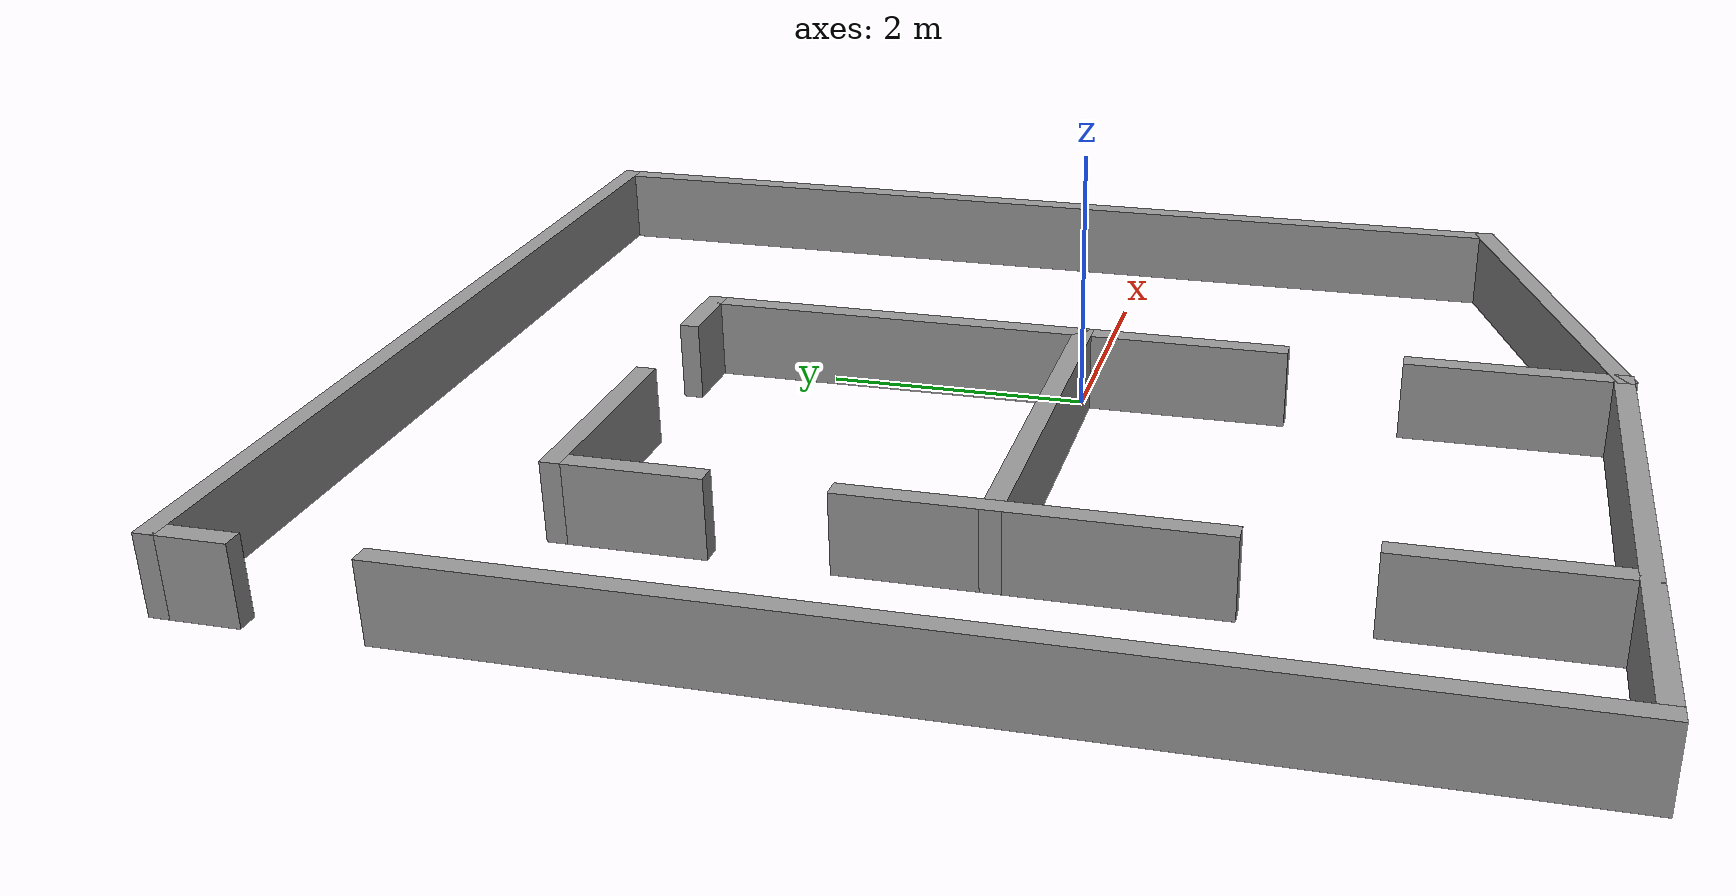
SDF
<?xml version='1.0'?>
<sdf version='1.6'>
  <model name='multiple_rooms_walls'>
    <pose frame=''>-0.740066 0.490066 0 0 -0 0</pose>
    <link name='Wall_12'>
      <collision name='Wall_12_Collision'>
        <geometry>
          <box>
            <size>4.65 0.15 0.6</size>
          </box>
        </geometry>
        <pose frame=''>0 0 0.3 0 -0 0</pose>
      </collision>
      <visual name='Wall_12_Visual'>
        <pose frame=''>0 0 0.3 0 -0 0</pose>
        <geometry>
          <box>
            <size>4.65 0.15 0.6</size>
          </box>
        </geometry>
        <material>
          <script>
            <uri>file://media/materials/scripts/gazebo.material</uri>
            <name>Gazebo/Grey</name>
          </script>
          <ambient>1 1 1 1</ambient>
        </material>
        <meta>
          <layer>0</layer>
        </meta>
      </visual>
      <pose frame=''>-1.50993 -4.49007 0 0 -0 0</pose>
    </link>
    <link name='Wall_14'>
      <collision name='Wall_14_Collision'>
        <geometry>
          <box>
            <size>3.31228 0.15 0.6</size>
          </box>
        </geometry>
        <pose frame=''>0 0 0.3 0 -0 0</pose>
      </collision>
      <visual name='Wall_14_Visual'>
        <pose frame=''>0 0 0.3 0 -0 0</pose>
        <geometry>
          <box>
            <size>3.31228 0.15 0.6</size>
          </box>
        </geometry>
        <material>
          <script>
            <uri>file://media/materials/scripts/gazebo.material</uri>
            <name>Gazebo/Grey</name>
          </script>
          <ambient>1 1 1 1</ambient>
        </material>
        <meta>
          <layer>0</layer>
        </meta>
      </visual>
      <pose frame=''>2.24007 -3.99007 0 0 -0 0.321751</pose>
    </link>
    <link name='Wall_16'>
      <collision name='Wall_16_Collision'>
        <geometry>
          <box>
            <size>8.15 0.15 0.6</size>
          </box>
        </geometry>
        <pose frame=''>0 0 0.3 0 -0 0</pose>
      </collision>
      <visual name='Wall_16_Visual'>
        <pose frame=''>0 0 0.3 0 -0 0</pose>
        <geometry>
          <box>
            <size>8.15 0.15 0.6</size>
          </box>
        </geometry>
        <material>
          <script>
            <uri>file://media/materials/scripts/gazebo.material</uri>
            <name>Gazebo/Grey</name>
          </script>
          <ambient>1 1 1 1</ambient>
        </material>
        <meta>
          <layer>0</layer>
        </meta>
      </visual>
      <pose frame=''>3.74007 0.509934 0 0 -0 1.5708</pose>
    </link>
    <link name='Wall_25'>
      <collision name='Wall_25_Collision'>
        <geometry>
          <box>
            <size>4.65 0.15 0.6</size>
          </box>
        </geometry>
        <pose frame=''>0 0 0.3 0 -0 0</pose>
      </collision>
      <visual name='Wall_25_Visual'>
        <pose frame=''>0 0 0.3 0 -0 0</pose>
        <geometry>
          <box>
            <size>4.65 0.15 0.6</size>
          </box>
        </geometry>
        <material>
          <script>
            <uri>file://media/materials/scripts/gazebo.material</uri>
            <name>Gazebo/Grey</name>
          </script>
          <ambient>1 1 1 1</ambient>
        </material>
        <meta>
          <layer>0</layer>
        </meta>
      </visual>
      <pose frame=''>0.740066 0.259934 0 0 -0 1.5708</pose>
    </link>
    <link name='Wall_27'>
      <collision name='Wall_27_Collision'>
        <geometry>
          <box>
            <size>0.65 0.15 0.6</size>
          </box>
        </geometry>
        <pose frame=''>0 0 0.3 0 -0 0</pose>
      </collision>
      <visual name='Wall_27_Visual'>
        <pose frame=''>0 0 0.3 0 -0 0</pose>
        <geometry>
          <box>
            <size>0.65 0.15 0.6</size>
          </box>
        </geometry>
        <material>
          <script>
            <uri>file://media/materials/scripts/gazebo.material</uri>
            <name>Gazebo/Grey</name>
          </script>
          <ambient>1 1 1 1</ambient>
        </material>
        <meta>
          <layer>0</layer>
        </meta>
      </visual>
      <pose frame=''>0.490066 2.50993 0 0 -0 3.14159</pose>
    </link>
    <link name='Wall_29'>
      <collision name='Wall_29_Collision'>
        <geometry>
          <box>
            <size>1.65 0.15 0.6</size>
          </box>
        </geometry>
        <pose frame=''>0 0 0.3 0 -0 0</pose>
      </collision>
      <visual name='Wall_29_Visual'>
        <pose frame=''>0 0 0.3 0 -0 0</pose>
        <geometry>
          <box>
            <size>1.65 0.15 0.6</size>
          </box>
        </geometry>
        <material>
          <script>
            <uri>file://media/materials/scripts/gazebo.material</uri>
            <name>Gazebo/Grey</name>
          </script>
          <ambient>1 1 1 1</ambient>
        </material>
        <meta>
          <layer>0</layer>
        </meta>
      </visual>
      <pose frame=''>-1.50993 2.50993 0 0 -0 3.14159</pose>
    </link>
    <link name='Wall_31'>
      <collision name='Wall_31_Collision'>
        <geometry>
          <box>
            <size>1.15 0.15 0.6</size>
          </box>
        </geometry>
        <pose frame=''>0 0 0.3 0 -0 0</pose>
      </collision>
      <visual name='Wall_31_Visual'>
        <pose frame=''>0 0 0.3 0 -0 0</pose>
        <geometry>
          <box>
            <size>1.15 0.15 0.6</size>
          </box>
        </geometry>
        <material>
          <script>
            <uri>file://media/materials/scripts/gazebo.material</uri>
            <name>Gazebo/Grey</name>
          </script>
          <ambient>1 1 1 1</ambient>
        </material>
        <meta>
          <layer>0</layer>
        </meta>
      </visual>
      <pose frame=''>-2.25993 2.00993 0 0 -0 -1.5708</pose>
    </link>
    <link name='Wall_34'>
      <collision name='Wall_34_Collision'>
        <geometry>
          <box>
            <size>2.65 0.15 0.6</size>
          </box>
        </geometry>
        <pose frame=''>0 0 0.3 0 -0 0</pose>
      </collision>
      <visual name='Wall_34_Visual'>
        <pose frame=''>0 0 0.3 0 -0 0</pose>
        <geometry>
          <box>
            <size>2.65 0.15 0.6</size>
          </box>
        </geometry>
        <material>
          <script>
            <uri>file://media/materials/scripts/gazebo.material</uri>
            <name>Gazebo/Grey</name>
          </script>
          <ambient>1 1 1 1</ambient>
        </material>
        <meta>
          <layer>0</layer>
        </meta>
      </visual>
      <pose frame=''>-2.25993 -0.740066 0 0 -0 -1.5708</pose>
    </link>
    <link name='Wall_36'>
      <collision name='Wall_36_Collision'>
        <geometry>
          <box>
            <size>3.15 0.15 0.6</size>
          </box>
        </geometry>
        <pose frame=''>0 0 0.3 0 -0 0</pose>
      </collision>
      <visual name='Wall_36_Visual'>
        <pose frame=''>0 0 0.3 0 -0 0</pose>
        <geometry>
          <box>
            <size>3.15 0.15 0.6</size>
          </box>
        </geometry>
        <material>
          <script>
            <uri>file://media/materials/scripts/gazebo.material</uri>
            <name>Gazebo/Grey</name>
          </script>
          <ambient>1 1 1 1</ambient>
        </material>
        <meta>
          <layer>0</layer>
        </meta>
      </visual>
      <pose frame=''>-0.759934 -0.490066 0 0 -0 0</pose>
    </link>
    <link name='Wall_38'>
      <collision name='Wall_38_Collision'>
        <geometry>
          <box>
            <size>1.65 0.15 0.6</size>
          </box>
        </geometry>
        <pose frame=''>0 0 0.3 0 -0 0</pose>
      </collision>
      <visual name='Wall_38_Visual'>
        <pose frame=''>0 0 0.3 0 -0 0</pose>
        <geometry>
          <box>
            <size>1.65 0.15 0.6</size>
          </box>
        </geometry>
        <material>
          <script>
            <uri>file://media/materials/scripts/gazebo.material</uri>
            <name>Gazebo/Grey</name>
          </script>
          <ambient>1 1 1 1</ambient>
        </material>
        <meta>
          <layer>0</layer>
        </meta>
      </visual>
      <pose frame=''>-2.25993 -3.74007 0 0 -0 -1.5708</pose>
    </link>
    <link name='Wall_4'>
      <collision name='Wall_4_Collision'>
        <geometry>
          <box>
            <size>7.65 0.15 0.6</size>
          </box>
        </geometry>
        <pose frame=''>0 0 0.3 0 -0 0</pose>
      </collision>
      <visual name='Wall_4_Visual'>
        <pose frame=''>0 0 0.3 0 -0 0</pose>
        <geometry>
          <box>
            <size>7.65 0.15 0.6</size>
          </box>
        </geometry>
        <material>
          <script>
            <uri>file://media/materials/scripts/gazebo.material</uri>
            <name>Gazebo/Grey</name>
          </script>
          <ambient>1 1 1 1</ambient>
        </material>
        <meta>
          <layer>0</layer>
        </meta>
      </visual>
      <pose frame=''>-0.009934 4.50993 0 0 -0 0</pose>
    </link>
    <link name='Wall_40'>
      <collision name='Wall_40_Collision'>
        <geometry>
          <box>
            <size>1.65 0.15 0.6</size>
          </box>
        </geometry>
        <pose frame=''>0 0 0.3 0 -0 0</pose>
      </collision>
      <visual name='Wall_40_Visual'>
        <pose frame=''>0 0 0.3 0 -0 0</pose>
        <geometry>
          <box>
            <size>1.65 0.15 0.6</size>
          </box>
        </geometry>
        <material>
          <script>
            <uri>file://media/materials/scripts/gazebo.material</uri>
            <name>Gazebo/Grey</name>
          </script>
          <ambient>1 1 1 1</ambient>
        </material>
        <meta>
          <layer>0</layer>
        </meta>
      </visual>
      <pose frame=''>0.740066 -3.74007 0 0 -0 -1.5708</pose>
    </link>
    <link name='Wall_6'>
      <collision name='Wall_6_Collision'>
        <geometry>
          <box>
            <size>0.65 0.15 0.6</size>
          </box>
        </geometry>
        <pose frame=''>0 0 0.3 0 -0 0</pose>
      </collision>
      <visual name='Wall_6_Visual'>
        <pose frame=''>0 0 0.3 0 -0 0</pose>
        <geometry>
          <box>
            <size>0.65 0.15 0.6</size>
          </box>
        </geometry>
        <material>
          <script>
            <uri>file://media/materials/scripts/gazebo.material</uri>
            <name>Gazebo/Grey</name>
          </script>
          <ambient>1 1 1 1</ambient>
        </material>
        <meta>
          <layer>0</layer>
        </meta>
      </visual>
      <pose frame=''>-3.75993 4.25993 0 0 -0 -1.5708</pose>
    </link>
    <link name='Wall_8'>
      <collision name='Wall_8_Collision'>
        <geometry>
          <box>
            <size>7.65 0.15 0.6</size>
          </box>
        </geometry>
        <pose frame=''>0 0 0.3 0 -0 0</pose>
      </collision>
      <visual name='Wall_8_Visual'>
        <pose frame=''>0 0 0.3 0 -0 0</pose>
        <geometry>
          <box>
            <size>7.65 0.15 0.6</size>
          </box>
        </geometry>
        <material>
          <script>
            <uri>file://media/materials/scripts/gazebo.material</uri>
            <name>Gazebo/Grey</name>
          </script>
          <ambient>1 1 1 1</ambient>
        </material>
        <meta>
          <layer>0</layer>
        </meta>
      </visual>
      <pose frame=''>-3.75993 -0.740066 0 0 -0 -1.5708</pose>
    </link>
    <static>1</static>
  </model>
</sdf>
